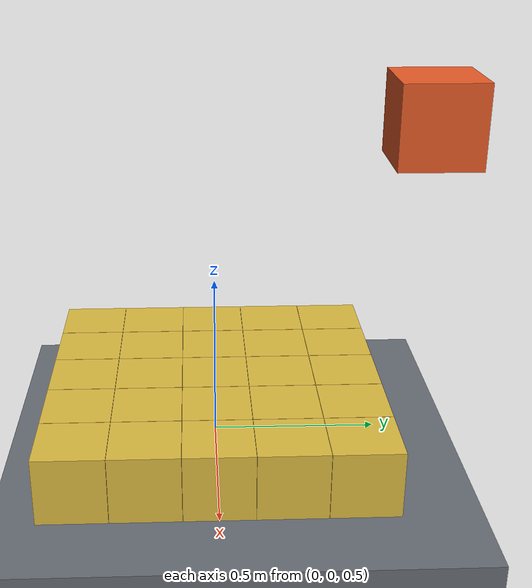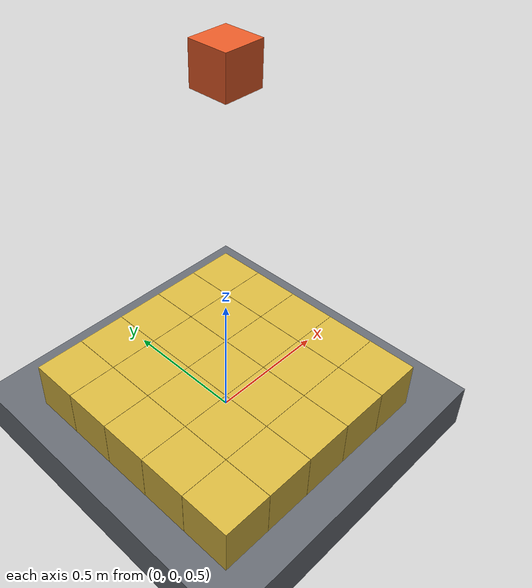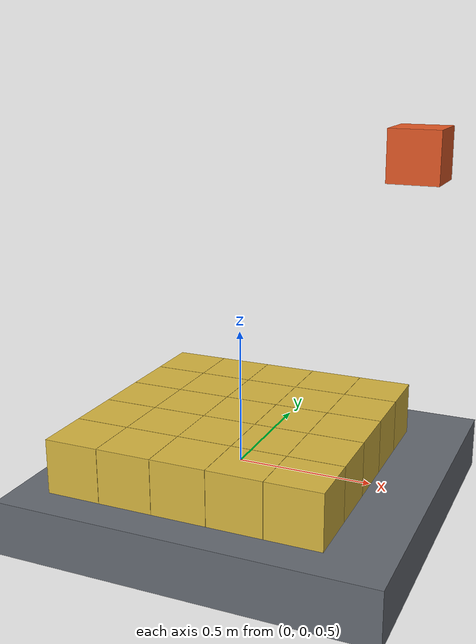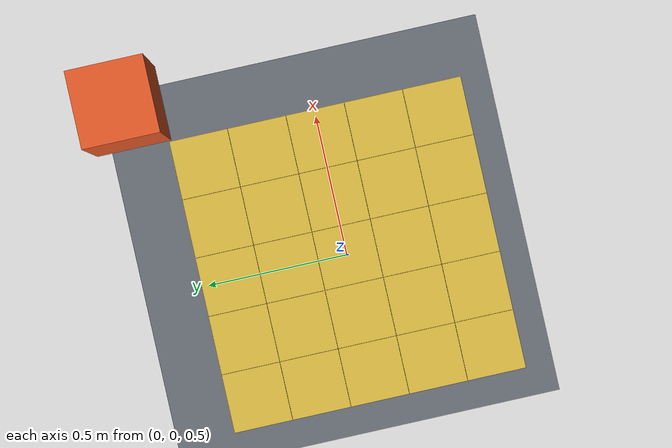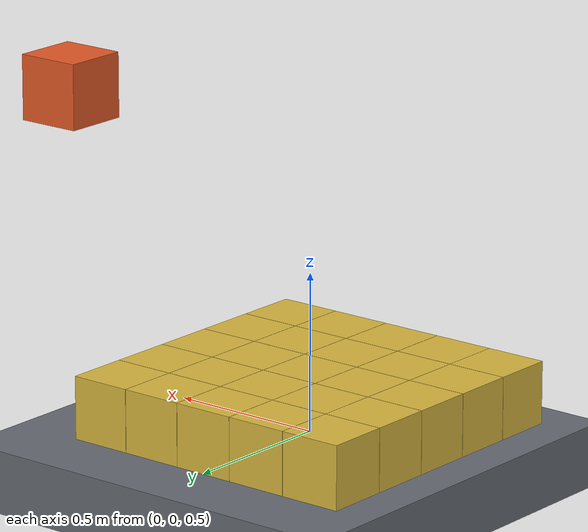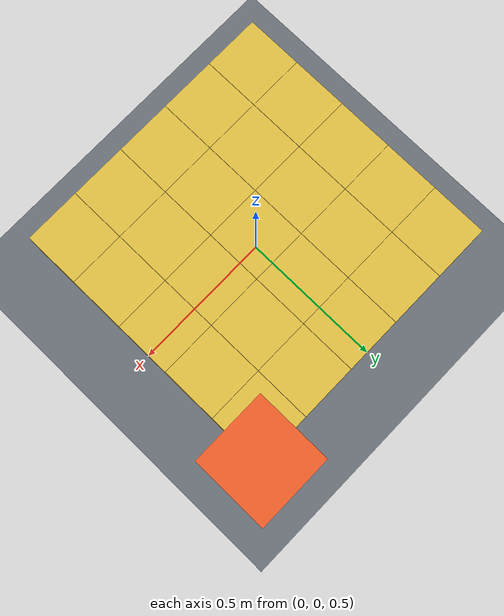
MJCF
<mujoco model="ladder0_rung9_mujoco">

  <!-- Only gravity and the timestep are set from the contract.  Everything
       else is MuJoCo's default, on purpose: this arm is the un-tuned
       reference for the solver OmniSim runs underneath. -->
  <option timestep="0.004" gravity="0 0 -9.81"/>

  <default>
    <!-- sliding / torsional / rolling.  condim defaults to 3, so only the
         first component is in force; the rest are declared for the record. -->
    <geom friction="1.0 0.005 0.0001"/>
  </default>

  <worldbody>
    <!-- Floor slab: full extents 20.0 x 20.0 x 0.2 m centred at z=0.4,
         so its top surface is at z=0.5.  Deliberately NOT at z=0. -->
    <geom name="floor" type="box" size="10.0 10.0 0.1" pos="0 0 0.4"
          rgba="0.4 0.42 0.45 1"/>

    <body name="p00" pos="-0.402 -0.402 0.6">
      <freejoint name="p00_free"/>
      <geom name="p00_geom" type="box" size="0.1 0.1 0.1" mass="1.0"
            rgba="0.85 0.72 0.25 1"/>
    </body>

    <body name="p01" pos="-0.402 -0.201 0.6">
      <freejoint name="p01_free"/>
      <geom name="p01_geom" type="box" size="0.1 0.1 0.1" mass="1.0"
            rgba="0.85 0.72 0.25 1"/>
    </body>

    <body name="p02" pos="-0.402 0.0 0.6">
      <freejoint name="p02_free"/>
      <geom name="p02_geom" type="box" size="0.1 0.1 0.1" mass="1.0"
            rgba="0.85 0.72 0.25 1"/>
    </body>

    <body name="p03" pos="-0.402 0.201 0.6">
      <freejoint name="p03_free"/>
      <geom name="p03_geom" type="box" size="0.1 0.1 0.1" mass="1.0"
            rgba="0.85 0.72 0.25 1"/>
    </body>

    <body name="p04" pos="-0.402 0.402 0.6">
      <freejoint name="p04_free"/>
      <geom name="p04_geom" type="box" size="0.1 0.1 0.1" mass="1.0"
            rgba="0.85 0.72 0.25 1"/>
    </body>

    <body name="p10" pos="-0.201 -0.402 0.6">
      <freejoint name="p10_free"/>
      <geom name="p10_geom" type="box" size="0.1 0.1 0.1" mass="1.0"
            rgba="0.85 0.72 0.25 1"/>
    </body>

    <body name="p11" pos="-0.201 -0.201 0.6">
      <freejoint name="p11_free"/>
      <geom name="p11_geom" type="box" size="0.1 0.1 0.1" mass="1.0"
            rgba="0.85 0.72 0.25 1"/>
    </body>

    <body name="p12" pos="-0.201 0.0 0.6">
      <freejoint name="p12_free"/>
      <geom name="p12_geom" type="box" size="0.1 0.1 0.1" mass="1.0"
            rgba="0.85 0.72 0.25 1"/>
    </body>

    <body name="p13" pos="-0.201 0.201 0.6">
      <freejoint name="p13_free"/>
      <geom name="p13_geom" type="box" size="0.1 0.1 0.1" mass="1.0"
            rgba="0.85 0.72 0.25 1"/>
    </body>

    <body name="p14" pos="-0.201 0.402 0.6">
      <freejoint name="p14_free"/>
      <geom name="p14_geom" type="box" size="0.1 0.1 0.1" mass="1.0"
            rgba="0.85 0.72 0.25 1"/>
    </body>

    <body name="p20" pos="0.0 -0.402 0.6">
      <freejoint name="p20_free"/>
      <geom name="p20_geom" type="box" size="0.1 0.1 0.1" mass="1.0"
            rgba="0.85 0.72 0.25 1"/>
    </body>

    <body name="p21" pos="0.0 -0.201 0.6">
      <freejoint name="p21_free"/>
      <geom name="p21_geom" type="box" size="0.1 0.1 0.1" mass="1.0"
            rgba="0.85 0.72 0.25 1"/>
    </body>

    <body name="p22" pos="0.0 0.0 0.6">
      <freejoint name="p22_free"/>
      <geom name="p22_geom" type="box" size="0.1 0.1 0.1" mass="1.0"
            rgba="0.85 0.72 0.25 1"/>
    </body>

    <body name="p23" pos="0.0 0.201 0.6">
      <freejoint name="p23_free"/>
      <geom name="p23_geom" type="box" size="0.1 0.1 0.1" mass="1.0"
            rgba="0.85 0.72 0.25 1"/>
    </body>

    <body name="p24" pos="0.0 0.402 0.6">
      <freejoint name="p24_free"/>
      <geom name="p24_geom" type="box" size="0.1 0.1 0.1" mass="1.0"
            rgba="0.85 0.72 0.25 1"/>
    </body>

    <body name="p30" pos="0.201 -0.402 0.6">
      <freejoint name="p30_free"/>
      <geom name="p30_geom" type="box" size="0.1 0.1 0.1" mass="1.0"
            rgba="0.85 0.72 0.25 1"/>
    </body>

    <body name="p31" pos="0.201 -0.201 0.6">
      <freejoint name="p31_free"/>
      <geom name="p31_geom" type="box" size="0.1 0.1 0.1" mass="1.0"
            rgba="0.85 0.72 0.25 1"/>
    </body>

    <body name="p32" pos="0.201 0.0 0.6">
      <freejoint name="p32_free"/>
      <geom name="p32_geom" type="box" size="0.1 0.1 0.1" mass="1.0"
            rgba="0.85 0.72 0.25 1"/>
    </body>

    <body name="p33" pos="0.201 0.201 0.6">
      <freejoint name="p33_free"/>
      <geom name="p33_geom" type="box" size="0.1 0.1 0.1" mass="1.0"
            rgba="0.85 0.72 0.25 1"/>
    </body>

    <body name="p34" pos="0.201 0.402 0.6">
      <freejoint name="p34_free"/>
      <geom name="p34_geom" type="box" size="0.1 0.1 0.1" mass="1.0"
            rgba="0.85 0.72 0.25 1"/>
    </body>

    <body name="p40" pos="0.402 -0.402 0.6">
      <freejoint name="p40_free"/>
      <geom name="p40_geom" type="box" size="0.1 0.1 0.1" mass="1.0"
            rgba="0.85 0.72 0.25 1"/>
    </body>

    <body name="p41" pos="0.402 -0.201 0.6">
      <freejoint name="p41_free"/>
      <geom name="p41_geom" type="box" size="0.1 0.1 0.1" mass="1.0"
            rgba="0.85 0.72 0.25 1"/>
    </body>

    <body name="p42" pos="0.402 0.0 0.6">
      <freejoint name="p42_free"/>
      <geom name="p42_geom" type="box" size="0.1 0.1 0.1" mass="1.0"
            rgba="0.85 0.72 0.25 1"/>
    </body>

    <body name="p43" pos="0.402 0.201 0.6">
      <freejoint name="p43_free"/>
      <geom name="p43_geom" type="box" size="0.1 0.1 0.1" mass="1.0"
            rgba="0.85 0.72 0.25 1"/>
    </body>

    <body name="p44" pos="0.402 0.402 0.6">
      <freejoint name="p44_free"/>
      <geom name="p44_geom" type="box" size="0.1 0.1 0.1" mass="1.0"
            rgba="0.85 0.72 0.25 1"/>
    </body>

    <body name="drop" pos="0.502001 0.502 1.6">
      <freejoint name="drop_free"/>
      <geom name="drop_geom" type="box" size="0.1 0.1 0.1" mass="1.0"
            rgba="0.9 0.35 0.15 1"/>
    </body>
  </worldbody>

</mujoco>
